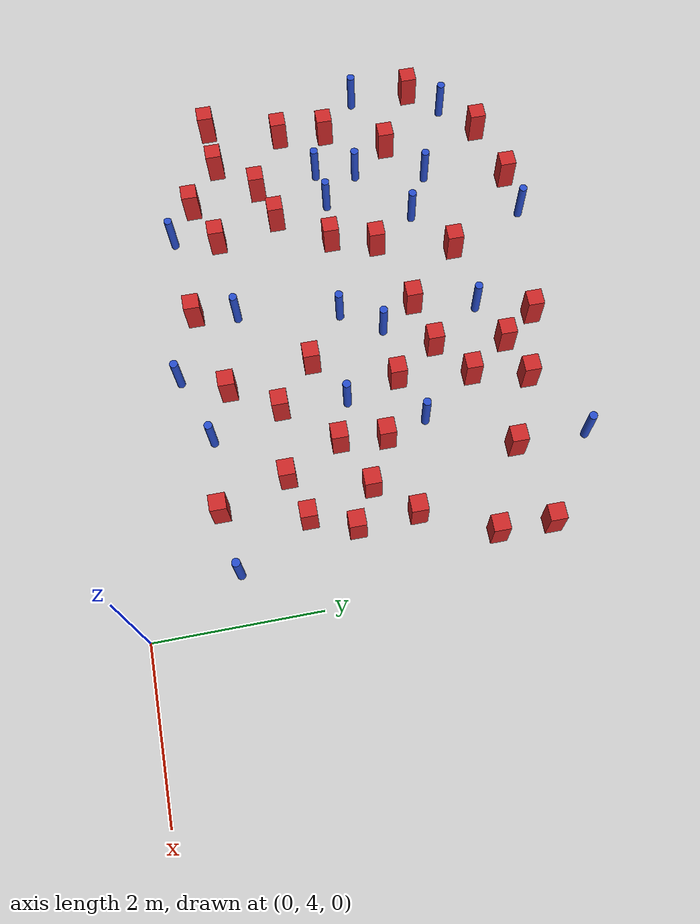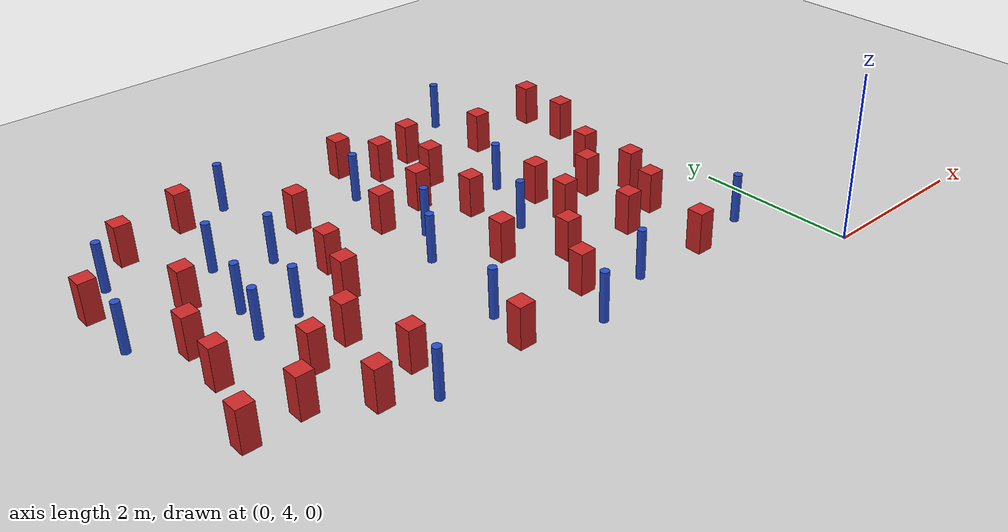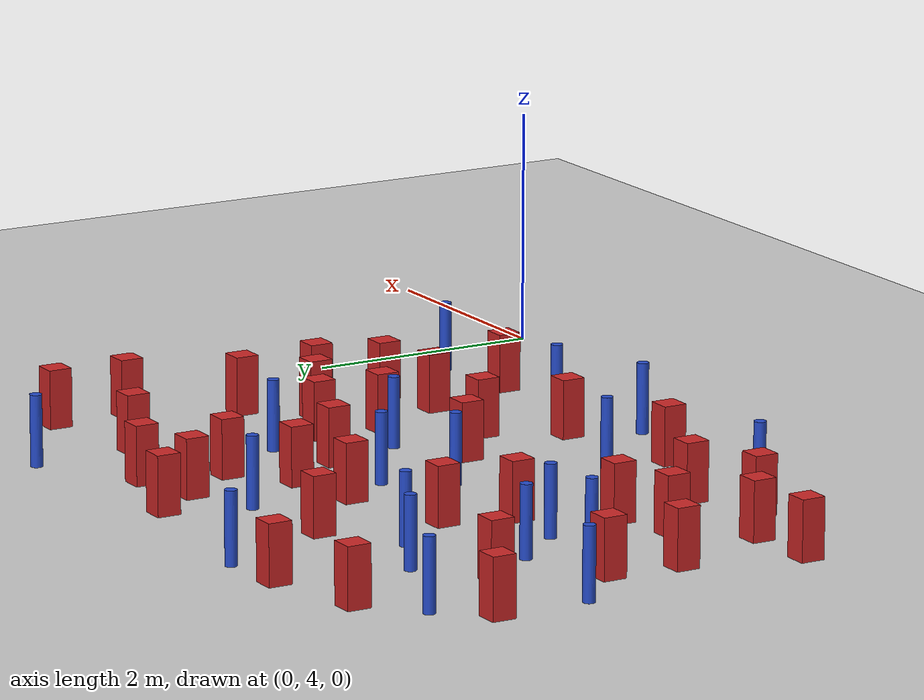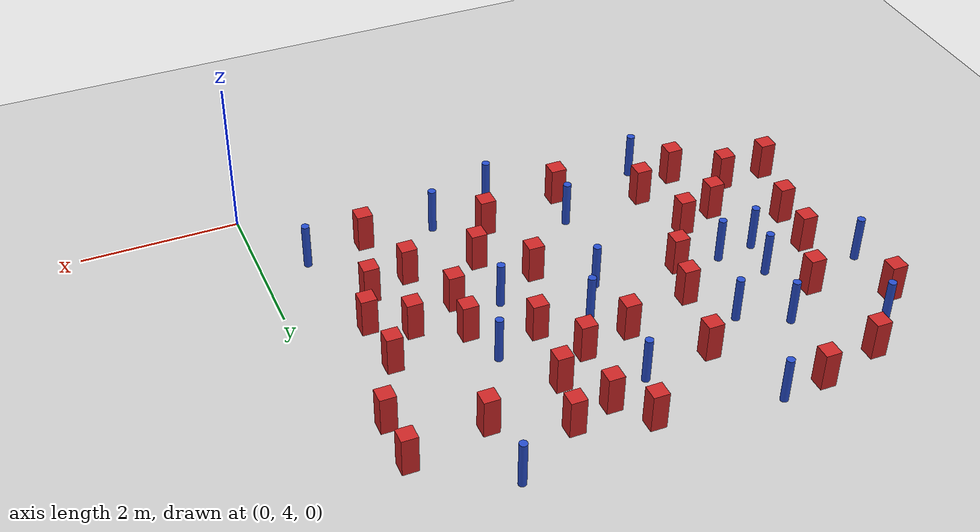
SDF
<sdf version="1.6">
 <world name="default">
  <model name="ground_plane">
   <static>1</static>
   <link name="link">
    <collision name="collision">
     <geometry><plane><normal>0 0 1</normal><size>100 100</size></plane></geometry>
     <surface><friction><ode><mu>100</mu><mu2>50</mu2></ode></friction></surface>
    </collision>
    <visual name="visual">
     <cast_shadows>0</cast_shadows>
     <geometry><plane><normal>0 0 1</normal><size>100 100</size></plane></geometry>
     <material>
      <ambient>1.0 1.0 1.0 1.0</ambient>
      <diffuse>0.8 0.8 0.8 1.0</diffuse>
      <specular>0.01 0.01 0.01 1.000000</specular>
     </material>
    </visual>
   </link>
  </model>
  <model name="pole_obstacle1">
   <static>true</static>
   <pose>-5.81910366463 6.87950488392 -3.09024884793e-07 -7.19054271911e-07 -2.1131507516e-07 -1.93935509277e-07</pose>
   <link name="link">
    <pose>0 0 0.3 0 -0 0</pose>
    <inertial>
     <mass>1</mass>
     <inertia><ixx>0.145833</ixx><ixy>0</ixy><ixz>0</ixz><iyy>0.145833</iyy><iyz>0</iyz><izz>0.125</izz></inertia>
    </inertial>
    <collision name="collision">
     <geometry><cylinder><radius>0.05</radius><length>.6</length></cylinder></geometry>
    </collision>
    <visual name="visual">
     <geometry><cylinder><radius>0.05</radius><length>.6</length></cylinder></geometry>
     <material>
      <script><name>Gazebo/Blue</name><uri>file://media/materials/scripts/gazebo.material</uri></script>
     </material>
    </visual>
   </link>
  </model>
  <model name="pole_obstacle7">
   <static>true</static>
   <pose>-1.54520545969 9.47205895562 -3.09024884793e-07 -7.19054271912e-07 -2.1131507515e-07 -1.93935509273e-07</pose>
   <link name="link">
    <pose>0 0 0.3 0 -0 0</pose>
    <inertial>
     <mass>1</mass>
     <inertia><ixx>0.145833</ixx><ixy>0</ixy><ixz>0</ixz><iyy>0.145833</iyy><iyz>0</iyz><izz>0.125</izz></inertia>
    </inertial>
    <collision name="collision">
     <geometry><cylinder><radius>0.05</radius><length>.6</length></cylinder></geometry>
    </collision>
    <visual name="visual">
     <geometry><cylinder><radius>0.05</radius><length>.6</length></cylinder></geometry>
     <material>
      <script><name>Gazebo/Blue</name><uri>file://media/materials/scripts/gazebo.material</uri></script>
     </material>
    </visual>
   </link>
  </model>
  <model name="square_post_obstacle10">
   <static>true</static>
   <pose>-2.92185013055 8.78792637313 -4.36207812815e-07 3.75137919937e-06 9.77721102514e-07 2.47381364184e-05</pose>
   <link name="link">
    <pose>0 0 0.25 0 -0 0</pose>
    <inertial>
     <mass>100</mass>
     <inertia>
      <ixx>0.166667</ixx>
      <ixy>0</ixy>
      <ixz>0</ixz>
      <iyy>0.166667</iyy>
      <iyz>0</iyz>
      <izz>0.166667</izz>
     </inertia>
    </inertial>
    <collision name="collision"><geometry><box><size>.2 .2 .5</size></box></geometry></collision>
    <visual name="visual">
     <geometry><box><size>.2 .2 .5</size></box></geometry>
     <material>
      <script><name>Gazebo/Red</name><uri>file://media/materials/scripts/gazebo.material</uri></script>
     </material>
    </visual>
   </link>
  </model>
  <model name="pole_obstacle16">
   <static>true</static>
   <pose>-3.11988666219 4.73188384982 -3.09024884793e-07 -7.19054271912e-07 -2.11315075134e-07 -1.93935509266e-07</pose>
   <link name="link">
    <pose>0 0 0.3 0 -0 0</pose>
    <inertial>
     <mass>1</mass>
     <inertia><ixx>0.145833</ixx><ixy>0</ixy><ixz>0</ixz><iyy>0.145833</iyy><iyz>0</iyz><izz>0.125</izz></inertia>
    </inertial>
    <collision name="collision">
     <geometry><cylinder><radius>0.05</radius><length>.6</length></cylinder></geometry>
    </collision>
    <visual name="visual">
     <geometry><cylinder><radius>0.05</radius><length>.6</length></cylinder></geometry>
     <material>
      <script><name>Gazebo/Blue</name><uri>file://media/materials/scripts/gazebo.material</uri></script>
     </material>
    </visual>
   </link>
  </model>
  <model name="pole_obstacle21">
   <static>true</static>
   <pose>-2.4813401762 6.71034206275 -3.09024884793e-07 -7.19054271912e-07 -2.11315075134e-07 -1.93935509266e-07</pose>
   <link name="link">
    <pose>0 0 0.3 0 -0 0</pose>
    <inertial>
     <mass>1</mass>
     <inertia><ixx>0.145833</ixx><ixy>0</ixy><ixz>0</ixz><iyy>0.145833</iyy><iyz>0</iyz><izz>0.125</izz></inertia>
    </inertial>
    <collision name="collision">
     <geometry><cylinder><radius>0.05</radius><length>.6</length></cylinder></geometry>
    </collision>
    <visual name="visual">
     <geometry><cylinder><radius>0.05</radius><length>.6</length></cylinder></geometry>
     <material>
      <script><name>Gazebo/Blue</name><uri>file://media/materials/scripts/gazebo.material</uri></script>
     </material>
    </visual>
   </link>
  </model>
  <model name="square_post_obstacle20">
   <static>true</static>
   <pose>-5.69033943853 6.07431925218 -4.36207812815e-07 3.75137919937e-06 9.77721102514e-07 2.47381364184e-05</pose>
   <link name="link">
    <pose>0 0 0.25 0 -0 0</pose>
    <inertial>
     <mass>100</mass>
     <inertia>
      <ixx>0.166667</ixx>
      <ixy>0</ixy>
      <ixz>0</ixz>
      <iyy>0.166667</iyy>
      <iyz>0</iyz>
      <izz>0.166667</izz>
     </inertia>
    </inertial>
    <collision name="collision"><geometry><box><size>.2 .2 .5</size></box></geometry></collision>
    <visual name="visual">
     <geometry><box><size>.2 .2 .5</size></box></geometry>
     <material>
      <script><name>Gazebo/Red</name><uri>file://media/materials/scripts/gazebo.material</uri></script>
     </material>
    </visual>
   </link>
  </model>
  <model name="square_post_obstacle23">
   <static>true</static>
   <pose>-0.913384427805 7.26544843649 -4.36207812815e-07 3.75137919937e-06 9.77721102514e-07 2.47381364184e-05</pose>
   <link name="link">
    <pose>0 0 0.25 0 -0 0</pose>
    <inertial>
     <mass>100</mass>
     <inertia>
      <ixx>0.166667</ixx>
      <ixy>0</ixy>
      <ixz>0</ixz>
      <iyy>0.166667</iyy>
      <iyz>0</iyz>
      <izz>0.166667</izz>
     </inertia>
    </inertial>
    <collision name="collision"><geometry><box><size>.2 .2 .5</size></box></geometry></collision>
    <visual name="visual">
     <geometry><box><size>.2 .2 .5</size></box></geometry>
     <material>
      <script><name>Gazebo/Red</name><uri>file://media/materials/scripts/gazebo.material</uri></script>
     </material>
    </visual>
   </link>
  </model>
  <model name="pole_obstacle31">
   <static>true</static>
   <pose>-0.582578847249 5.12245408738 -3.09024884793e-07 -7.19054271912e-07 -2.11315075129e-07 -1.93935509261e-07</pose>
   <link name="link">
    <pose>0 0 0.3 0 -0 0</pose>
    <inertial>
     <mass>1</mass>
     <inertia><ixx>0.145833</ixx><ixy>0</ixy><ixz>0</ixz><iyy>0.145833</iyy><iyz>0</iyz><izz>0.125</izz></inertia>
    </inertial>
    <collision name="collision">
     <geometry><cylinder><radius>0.05</radius><length>.6</length></cylinder></geometry>
    </collision>
    <visual name="visual">
     <geometry><cylinder><radius>0.05</radius><length>.6</length></cylinder></geometry>
     <material>
      <script><name>Gazebo/Blue</name><uri>file://media/materials/scripts/gazebo.material</uri></script>
     </material>
    </visual>
   </link>
  </model>
  <model name="square_post_obstacle28">
   <static>true</static>
   <pose>-1.90888130662 7.08629762976 -4.36207812815e-07 3.75137919937e-06 9.77721102514e-07 2.47381364184e-05</pose>
   <link name="link">
    <pose>0 0 0.25 0 -0 0</pose>
    <inertial>
     <mass>100</mass>
     <inertia>
      <ixx>0.166667</ixx>
      <ixy>0</ixy>
      <ixz>0</ixz>
      <iyy>0.166667</iyy>
      <iyz>0</iyz>
      <izz>0.166667</izz>
     </inertia>
    </inertial>
    <collision name="collision"><geometry><box><size>.2 .2 .5</size></box></geometry></collision>
    <visual name="visual">
     <geometry><box><size>.2 .2 .5</size></box></geometry>
     <material>
      <script><name>Gazebo/Red</name><uri>file://media/materials/scripts/gazebo.material</uri></script>
     </material>
    </visual>
   </link>
  </model>
  <model name="pole_obstacle51">
   <static>true</static>
   <pose>-3.68002328064 6.82890027857 -3.09024884793e-07 -7.19054271912e-07 -2.11315075134e-07 -1.93935509266e-07</pose>
   <link name="link">
    <pose>0 0 0.3 0 -0 0</pose>
    <inertial>
     <mass>1</mass>
     <inertia><ixx>0.145833</ixx><ixy>0</ixy><ixz>0</ixz><iyy>0.145833</iyy><iyz>0</iyz><izz>0.125</izz></inertia>
    </inertial>
    <collision name="collision">
     <geometry><cylinder><radius>0.05</radius><length>.6</length></cylinder></geometry>
    </collision>
    <visual name="visual">
     <geometry><cylinder><radius>0.05</radius><length>.6</length></cylinder></geometry>
     <material>
      <script><name>Gazebo/Blue</name><uri>file://media/materials/scripts/gazebo.material</uri></script>
     </material>
    </visual>
   </link>
  </model>
  <model name="square_post_obstacle40">
   <static>true</static>
   <pose>-1.96102876707 6.52310053154 -4.36207812815e-07 3.75137919937e-06 9.77721102514e-07 2.47381364184e-05</pose>
   <link name="link">
    <pose>0 0 0.25 0 -0 0</pose>
    <inertial>
     <mass>100</mass>
     <inertia>
      <ixx>0.166667</ixx>
      <ixy>0</ixy>
      <ixz>0</ixz>
      <iyy>0.166667</iyy>
      <iyz>0</iyz>
      <izz>0.166667</izz>
     </inertia>
    </inertial>
    <collision name="collision"><geometry><box><size>.2 .2 .5</size></box></geometry></collision>
    <visual name="visual">
     <geometry><box><size>.2 .2 .5</size></box></geometry>
     <material>
      <script><name>Gazebo/Red</name><uri>file://media/materials/scripts/gazebo.material</uri></script>
     </material>
    </visual>
   </link>
  </model>
  <model name="pole_obstacle63">
   <static>true</static>
   <pose>-6.89282712738 7.5607407671 -3.09024884793e-07 -7.19054271911e-07 -2.1131507516e-07 -1.93935509277e-07</pose>
   <link name="link">
    <pose>0 0 0.3 0 -0 0</pose>
    <inertial>
     <mass>1</mass>
     <inertia><ixx>0.145833</ixx><ixy>0</ixy><ixz>0</ixz><iyy>0.145833</iyy><iyz>0</iyz><izz>0.125</izz></inertia>
    </inertial>
    <collision name="collision">
     <geometry><cylinder><radius>0.05</radius><length>.6</length></cylinder></geometry>
    </collision>
    <visual name="visual">
     <geometry><cylinder><radius>0.05</radius><length>.6</length></cylinder></geometry>
     <material>
      <script><name>Gazebo/Blue</name><uri>file://media/materials/scripts/gazebo.material</uri></script>
     </material>
    </visual>
   </link>
  </model>
  <model name="pole_obstacle66">
   <static>true</static>
   <pose>-3.36919342229 7.32905597571 -3.09024884793e-07 -7.19054271912e-07 -2.11315075134e-07 -1.93935509266e-07</pose>
   <link name="link">
    <pose>0 0 0.3 0 -0 0</pose>
    <inertial>
     <mass>1</mass>
     <inertia><ixx>0.145833</ixx><ixy>0</ixy><ixz>0</ixz><iyy>0.145833</iyy><iyz>0</iyz><izz>0.125</izz></inertia>
    </inertial>
    <collision name="collision">
     <geometry><cylinder><radius>0.05</radius><length>.6</length></cylinder></geometry>
    </collision>
    <visual name="visual">
     <geometry><cylinder><radius>0.05</radius><length>.6</length></cylinder></geometry>
     <material>
      <script><name>Gazebo/Blue</name><uri>file://media/materials/scripts/gazebo.material</uri></script>
     </material>
    </visual>
   </link>
  </model>
  <model name="square_post_obstacle53">
   <static>true</static>
   <pose>-6.05960566901 7.86683518899 -4.36207812815e-07 3.75137919937e-06 9.77721102514e-07 2.47381364184e-05</pose>
   <link name="link">
    <pose>0 0 0.25 0 -0 0</pose>
    <inertial>
     <mass>100</mass>
     <inertia>
      <ixx>0.166667</ixx>
      <ixy>0</ixy>
      <ixz>0</ixz>
      <iyy>0.166667</iyy>
      <iyz>0</iyz>
      <izz>0.166667</izz>
     </inertia>
    </inertial>
    <collision name="collision"><geometry><box><size>.2 .2 .5</size></box></geometry></collision>
    <visual name="visual">
     <geometry><box><size>.2 .2 .5</size></box></geometry>
     <material>
      <script><name>Gazebo/Red</name><uri>file://media/materials/scripts/gazebo.material</uri></script>
     </material>
    </visual>
   </link>
  </model>
  <model name="square_post_obstacle54">
   <static>true</static>
   <pose>-1.08335319631 6.00591386865 -4.36207812815e-07 3.75137919937e-06 9.77721102514e-07 2.47381364184e-05</pose>
   <link name="link">
    <pose>0 0 0.25 0 -0 0</pose>
    <inertial>
     <mass>100</mass>
     <inertia>
      <ixx>0.166667</ixx>
      <ixy>0</ixy>
      <ixz>0</ixz>
      <iyy>0.166667</iyy>
      <iyz>0</iyz>
      <izz>0.166667</izz>
     </inertia>
    </inertial>
    <collision name="collision"><geometry><box><size>.2 .2 .5</size></box></geometry></collision>
    <visual name="visual">
     <geometry><box><size>.2 .2 .5</size></box></geometry>
     <material>
      <script><name>Gazebo/Red</name><uri>file://media/materials/scripts/gazebo.material</uri></script>
     </material>
    </visual>
   </link>
  </model>
  <model name="square_post_obstacle56">
   <static>true</static>
   <pose>-6.75556557053 5.54607688171 -4.36207812815e-07 3.75137919937e-06 9.77721102514e-07 2.47381364184e-05</pose>
   <link name="link">
    <pose>0 0 0.25 0 -0 0</pose>
    <inertial>
     <mass>100</mass>
     <inertia>
      <ixx>0.166667</ixx>
      <ixy>0</ixy>
      <ixz>0</ixz>
      <iyy>0.166667</iyy>
      <iyz>0</iyz>
      <izz>0.166667</izz>
     </inertia>
    </inertial>
    <collision name="collision"><geometry><box><size>.2 .2 .5</size></box></geometry></collision>
    <visual name="visual">
     <geometry><box><size>.2 .2 .5</size></box></geometry>
     <material>
      <script><name>Gazebo/Red</name><uri>file://media/materials/scripts/gazebo.material</uri></script>
     </material>
    </visual>
   </link>
  </model>
  <model name="square_post_obstacle58">
   <static>true</static>
   <pose>-3.97775854832 5.02217775804 -4.36207812815e-07 3.75137919937e-06 9.77721102514e-07 2.47381364184e-05</pose>
   <link name="link">
    <pose>0 0 0.25 0 -0 0</pose>
    <inertial>
     <mass>100</mass>
     <inertia>
      <ixx>0.166667</ixx>
      <ixy>0</ixy>
      <ixz>0</ixz>
      <iyy>0.166667</iyy>
      <iyz>0</iyz>
      <izz>0.166667</izz>
     </inertia>
    </inertial>
    <collision name="collision"><geometry><box><size>.2 .2 .5</size></box></geometry></collision>
    <visual name="visual">
     <geometry><box><size>.2 .2 .5</size></box></geometry>
     <material>
      <script><name>Gazebo/Red</name><uri>file://media/materials/scripts/gazebo.material</uri></script>
     </material>
    </visual>
   </link>
  </model>
  <model name="pole_obstacle69">
   <static>true</static>
   <pose>-3.88545519508 5.54849793998 -3.09024884793e-07 -7.19054271912e-07 -2.11315075134e-07 -1.93935509266e-07</pose>
   <link name="link">
    <pose>0 0 0.3 0 -0 0</pose>
    <inertial>
     <mass>1</mass>
     <inertia><ixx>0.145833</ixx><ixy>0</ixy><ixz>0</ixz><iyy>0.145833</iyy><iyz>0</iyz><izz>0.125</izz></inertia>
    </inertial>
    <collision name="collision">
     <geometry><cylinder><radius>0.05</radius><length>.6</length></cylinder></geometry>
    </collision>
    <visual name="visual">
     <geometry><cylinder><radius>0.05</radius><length>.6</length></cylinder></geometry>
     <material>
      <script><name>Gazebo/Blue</name><uri>file://media/materials/scripts/gazebo.material</uri></script>
     </material>
    </visual>
   </link>
  </model>
  <model name="pole_obstacle71">
   <static>true</static>
   <pose>-6.54564221187 8.72471281637 -3.09024884793e-07 -7.19054271912e-07 -2.1131507513e-07 -1.93935509261e-07</pose>
   <link name="link">
    <pose>0 0 0.3 0 -0 0</pose>
    <inertial>
     <mass>1</mass>
     <inertia><ixx>0.145833</ixx><ixy>0</ixy><ixz>0</ixz><iyy>0.145833</iyy><iyz>0</iyz><izz>0.125</izz></inertia>
    </inertial>
    <collision name="collision">
     <geometry><cylinder><radius>0.05</radius><length>.6</length></cylinder></geometry>
    </collision>
    <visual name="visual">
     <geometry><cylinder><radius>0.05</radius><length>.6</length></cylinder></geometry>
     <material>
      <script><name>Gazebo/Blue</name><uri>file://media/materials/scripts/gazebo.material</uri></script>
     </material>
    </visual>
   </link>
  </model>
  <model name="square_post_obstacle62">
   <static>true</static>
   <pose>-4.75020035172 6.90127368243 -4.36207812815e-07 3.75137919937e-06 9.77721102514e-07 2.47381364184e-05</pose>
   <link name="link">
    <pose>0 0 0.25 0 -0 0</pose>
    <inertial>
     <mass>100</mass>
     <inertia>
      <ixx>0.166667</ixx>
      <ixy>0</ixy>
      <ixz>0</ixz>
      <iyy>0.166667</iyy>
      <iyz>0</iyz>
      <izz>0.166667</izz>
     </inertia>
    </inertial>
    <collision name="collision"><geometry><box><size>.2 .2 .5</size></box></geometry></collision>
    <visual name="visual">
     <geometry><box><size>.2 .2 .5</size></box></geometry>
     <material>
      <script><name>Gazebo/Red</name><uri>file://media/materials/scripts/gazebo.material</uri></script>
     </material>
    </visual>
   </link>
  </model>
  <model name="square_post_obstacle67">
   <static>true</static>
   <pose>-3.06063541114 6.3647445332 -4.36207812815e-07 3.75137919937e-06 9.77721102514e-07 2.47381364184e-05</pose>
   <link name="link">
    <pose>0 0 0.25 0 -0 0</pose>
    <inertial>
     <mass>100</mass>
     <inertia>
      <ixx>0.166667</ixx>
      <ixy>0</ixy>
      <ixz>0</ixz>
      <iyy>0.166667</iyy>
      <iyz>0</iyz>
      <izz>0.166667</izz>
     </inertia>
    </inertial>
    <collision name="collision"><geometry><box><size>.2 .2 .5</size></box></geometry></collision>
    <visual name="visual">
     <geometry><box><size>.2 .2 .5</size></box></geometry>
     <material>
      <script><name>Gazebo/Red</name><uri>file://media/materials/scripts/gazebo.material</uri></script>
     </material>
    </visual>
   </link>
  </model>
  <model name="square_post_obstacle69">
   <static>true</static>
   <pose>-6.48066098144 6.48810462248 -4.36207812815e-07 3.75137919937e-06 9.77721102514e-07 2.47381364184e-05</pose>
   <link name="link">
    <pose>0 0 0.25 0 -0 0</pose>
    <inertial>
     <mass>100</mass>
     <inertia>
      <ixx>0.166667</ixx>
      <ixy>0</ixy>
      <ixz>0</ixz>
      <iyy>0.166667</iyy>
      <iyz>0</iyz>
      <izz>0.166667</izz>
     </inertia>
    </inertial>
    <collision name="collision"><geometry><box><size>.2 .2 .5</size></box></geometry></collision>
    <visual name="visual">
     <geometry><box><size>.2 .2 .5</size></box></geometry>
     <material>
      <script><name>Gazebo/Red</name><uri>file://media/materials/scripts/gazebo.material</uri></script>
     </material>
    </visual>
   </link>
  </model>
  <model name="square_post_obstacle71">
   <static>true</static>
   <pose>-2.38871899332 8.95603052741 -4.36207812815e-07 3.75137919937e-06 9.77721102514e-07 2.47381364184e-05</pose>
   <link name="link">
    <pose>0 0 0.25 0 -0 0</pose>
    <inertial>
     <mass>100</mass>
     <inertia>
      <ixx>0.166667</ixx>
      <ixy>0</ixy>
      <ixz>0</ixz>
      <iyy>0.166667</iyy>
      <iyz>0</iyz>
      <izz>0.166667</izz>
     </inertia>
    </inertial>
    <collision name="collision"><geometry><box><size>.2 .2 .5</size></box></geometry></collision>
    <visual name="visual">
     <geometry><box><size>.2 .2 .5</size></box></geometry>
     <material>
      <script><name>Gazebo/Red</name><uri>file://media/materials/scripts/gazebo.material</uri></script>
     </material>
    </visual>
   </link>
  </model>
  <model name="square_post_obstacle76">
   <static>true</static>
   <pose>-2.66284268109 7.36898340388 -4.36207812815e-07 3.75137919937e-06 9.77721102514e-07 2.47381364184e-05</pose>
   <link name="link">
    <pose>0 0 0.25 0 -0 0</pose>
    <inertial>
     <mass>100</mass>
     <inertia>
      <ixx>0.166667</ixx>
      <ixy>0</ixy>
      <ixz>0</ixz>
      <iyy>0.166667</iyy>
      <iyz>0</iyz>
      <izz>0.166667</izz>
     </inertia>
    </inertial>
    <collision name="collision"><geometry><box><size>.2 .2 .5</size></box></geometry></collision>
    <visual name="visual">
     <geometry><box><size>.2 .2 .5</size></box></geometry>
     <material>
      <script><name>Gazebo/Red</name><uri>file://media/materials/scripts/gazebo.material</uri></script>
     </material>
    </visual>
   </link>
  </model>
  <model name="square_post_obstacle81">
   <static>true</static>
   <pose>-0.51741098183 8.13275958031 -4.36207812815e-07 3.75137919937e-06 9.77721102514e-07 2.47381364184e-05</pose>
   <link name="link">
    <pose>0 0 0.25 0 -0 0</pose>
    <inertial>
     <mass>100</mass>
     <inertia>
      <ixx>0.166667</ixx>
      <ixy>0</ixy>
      <ixz>0</ixz>
      <iyy>0.166667</iyy>
      <iyz>0</iyz>
      <izz>0.166667</izz>
     </inertia>
    </inertial>
    <collision name="collision"><geometry><box><size>.2 .2 .5</size></box></geometry></collision>
    <visual name="visual">
     <geometry><box><size>.2 .2 .5</size></box></geometry>
     <material>
      <script><name>Gazebo/Red</name><uri>file://media/materials/scripts/gazebo.material</uri></script>
     </material>
    </visual>
   </link>
  </model>
  <model name="pole_obstacle96">
   <static>true</static>
   <pose>-3.47852225665 8.54551004193 -3.09024884848e-07 -7.19054271902e-07 -2.11315075199e-07 -1.93935509286e-07</pose>
   <link name="link">
    <pose>0 0 0.3 0 -0 0</pose>
    <inertial>
     <mass>1</mass>
     <inertia><ixx>0.145833</ixx><ixy>0</ixy><ixz>0</ixz><iyy>0.145833</iyy><iyz>0</iyz><izz>0.125</izz></inertia>
    </inertial>
    <collision name="collision">
     <geometry><cylinder><radius>0.05</radius><length>.6</length></cylinder></geometry>
    </collision>
    <visual name="visual">
     <geometry><cylinder><radius>0.05</radius><length>.6</length></cylinder></geometry>
     <material>
      <script><name>Gazebo/Blue</name><uri>file://media/materials/scripts/gazebo.material</uri></script>
     </material>
    </visual>
   </link>
  </model>
  <model name="square_post_obstacle99">
   <static>true</static>
   <pose>-0.866859720588 6.53559169638 -4.36207812815e-07 3.75137919937e-06 9.77721102514e-07 2.47381364184e-05</pose>
   <link name="link">
    <pose>0 0 0.25 0 -0 0</pose>
    <inertial>
     <mass>100</mass>
     <inertia>
      <ixx>0.166667</ixx>
      <ixy>0</ixy>
      <ixz>0</ixz>
      <iyy>0.166667</iyy>
      <iyz>0</iyz>
      <izz>0.166667</izz>
     </inertia>
    </inertial>
    <collision name="collision"><geometry><box><size>.2 .2 .5</size></box></geometry></collision>
    <visual name="visual">
     <geometry><box><size>.2 .2 .5</size></box></geometry>
     <material>
      <script><name>Gazebo/Red</name><uri>file://media/materials/scripts/gazebo.material</uri></script>
     </material>
    </visual>
   </link>
  </model>
  <model name="square_post_obstacle108">
   <static>true</static>
   <pose>-2.8772956488 5.30305621792 -4.36207812815e-07 3.75137919937e-06 9.77721102514e-07 2.47381364184e-05</pose>
   <link name="link">
    <pose>0 0 0.25 0 -0 0</pose>
    <inertial>
     <mass>100</mass>
     <inertia>
      <ixx>0.166667</ixx>
      <ixy>0</ixy>
      <ixz>0</ixz>
      <iyy>0.166667</iyy>
      <iyz>0</iyz>
      <izz>0.166667</izz>
     </inertia>
    </inertial>
    <collision name="collision"><geometry><box><size>.2 .2 .5</size></box></geometry></collision>
    <visual name="visual">
     <geometry><box><size>.2 .2 .5</size></box></geometry>
     <material>
      <script><name>Gazebo/Red</name><uri>file://media/materials/scripts/gazebo.material</uri></script>
     </material>
    </visual>
   </link>
  </model>
  <model name="square_post_obstacle112">
   <static>true</static>
   <pose>-5.31039537098 9.34844124373 -4.36207812815e-07 3.75137919937e-06 9.77721102514e-07 2.47381364184e-05</pose>
   <link name="link">
    <pose>0 0 0.25 0 -0 0</pose>
    <inertial>
     <mass>100</mass>
     <inertia>
      <ixx>0.166667</ixx>
      <ixy>0</ixy>
      <ixz>0</ixz>
      <iyy>0.166667</iyy>
      <iyz>0</iyz>
      <izz>0.166667</izz>
     </inertia>
    </inertial>
    <collision name="collision"><geometry><box><size>.2 .2 .5</size></box></geometry></collision>
    <visual name="visual">
     <geometry><box><size>.2 .2 .5</size></box></geometry>
     <material>
      <script><name>Gazebo/Red</name><uri>file://media/materials/scripts/gazebo.material</uri></script>
     </material>
    </visual>
   </link>
  </model>
  <model name="square_post_obstacle113">
   <static>true</static>
   <pose>-0.518358275045 8.79095779649 -4.36207812815e-07 3.75137919937e-06 9.77721102514e-07 2.47381364184e-05</pose>
   <link name="link">
    <pose>0 0 0.25 0 -0 0</pose>
    <inertial>
     <mass>100</mass>
     <inertia>
      <ixx>0.166667</ixx>
      <ixy>0</ixy>
      <ixz>0</ixz>
      <iyy>0.166667</iyy>
      <iyz>0</iyz>
      <izz>0.166667</izz>
     </inertia>
    </inertial>
    <collision name="collision"><geometry><box><size>.2 .2 .5</size></box></geometry></collision>
    <visual name="visual">
     <geometry><box><size>.2 .2 .5</size></box></geometry>
     <material>
      <script><name>Gazebo/Red</name><uri>file://media/materials/scripts/gazebo.material</uri></script>
     </material>
    </visual>
   </link>
  </model>
  <model name="square_post_obstacle122">
   <static>true</static>
   <pose>-5.18973914766 6.25024698253 -4.36207812815e-07 3.75137919937e-06 9.77721102514e-07 2.47381364184e-05</pose>
   <link name="link">
    <pose>0 0 0.25 0 -0 0</pose>
    <inertial>
     <mass>100</mass>
     <inertia>
      <ixx>0.166667</ixx>
      <ixy>0</ixy>
      <ixz>0</ixz>
      <iyy>0.166667</iyy>
      <iyz>0</iyz>
      <izz>0.166667</izz>
     </inertia>
    </inertial>
    <collision name="collision"><geometry><box><size>.2 .2 .5</size></box></geometry></collision>
    <visual name="visual">
     <geometry><box><size>.2 .2 .5</size></box></geometry>
     <material>
      <script><name>Gazebo/Red</name><uri>file://media/materials/scripts/gazebo.material</uri></script>
     </material>
    </visual>
   </link>
  </model>
  <model name="pole_obstacle127">
   <static>true</static>
   <pose>-4.94865122802 8.01167630632 -3.09024884793e-07 -7.19054271912e-07 -2.11315075147e-07 -1.9393550927e-07</pose>
   <link name="link">
    <pose>0 0 0.3 0 -0 0</pose>
    <inertial>
     <mass>1</mass>
     <inertia><ixx>0.145833</ixx><ixy>0</ixy><ixz>0</ixz><iyy>0.145833</iyy><iyz>0</iyz><izz>0.125</izz></inertia>
    </inertial>
    <collision name="collision">
     <geometry><cylinder><radius>0.05</radius><length>.6</length></cylinder></geometry>
    </collision>
    <visual name="visual">
     <geometry><cylinder><radius>0.05</radius><length>.6</length></cylinder></geometry>
     <material>
      <script><name>Gazebo/Blue</name><uri>file://media/materials/scripts/gazebo.material</uri></script>
     </material>
    </visual>
   </link>
  </model>
  <model name="pole_obstacle130">
   <static>true</static>
   <pose>-5.10945780586 4.89234305358 -3.09024884793e-07 -7.19054271911e-07 -2.1131507516e-07 -1.93935509277e-07</pose>
   <link name="link">
    <pose>0 0 0.3 0 -0 0</pose>
    <inertial>
     <mass>1</mass>
     <inertia><ixx>0.145833</ixx><ixy>0</ixy><ixz>0</ixz><iyy>0.145833</iyy><iyz>0</iyz><izz>0.125</izz></inertia>
    </inertial>
    <collision name="collision">
     <geometry><cylinder><radius>0.05</radius><length>.6</length></cylinder></geometry>
    </collision>
    <visual name="visual">
     <geometry><cylinder><radius>0.05</radius><length>.6</length></cylinder></geometry>
     <material>
      <script><name>Gazebo/Blue</name><uri>file://media/materials/scripts/gazebo.material</uri></script>
     </material>
    </visual>
   </link>
  </model>
  <model name="square_post_obstacle129">
   <static>true</static>
   <pose>-1.62517659234 5.83879428474 -4.36207812815e-07 3.75137919937e-06 9.77721102514e-07 2.47381364184e-05</pose>
   <link name="link">
    <pose>0 0 0.25 0 -0 0</pose>
    <inertial>
     <mass>100</mass>
     <inertia>
      <ixx>0.166667</ixx>
      <ixy>0</ixy>
      <ixz>0</ixz>
      <iyy>0.166667</iyy>
      <iyz>0</iyz>
      <izz>0.166667</izz>
     </inertia>
    </inertial>
    <collision name="collision"><geometry><box><size>.2 .2 .5</size></box></geometry></collision>
    <visual name="visual">
     <geometry><box><size>.2 .2 .5</size></box></geometry>
     <material>
      <script><name>Gazebo/Red</name><uri>file://media/materials/scripts/gazebo.material</uri></script>
     </material>
    </visual>
   </link>
  </model>
  <model name="square_post_obstacle141">
   <static>true</static>
   <pose>-2.54960175752 8.27579716547 -4.36207812815e-07 3.75137919937e-06 9.77721102514e-07 2.47381364184e-05</pose>
   <link name="link">
    <pose>0 0 0.25 0 -0 0</pose>
    <inertial>
     <mass>100</mass>
     <inertia>
      <ixx>0.166667</ixx>
      <ixy>0</ixy>
      <ixz>0</ixz>
      <iyy>0.166667</iyy>
      <iyz>0</iyz>
      <izz>0.166667</izz>
     </inertia>
    </inertial>
    <collision name="collision"><geometry><box><size>.2 .2 .5</size></box></geometry></collision>
    <visual name="visual">
     <geometry><box><size>.2 .2 .5</size></box></geometry>
     <material>
      <script><name>Gazebo/Red</name><uri>file://media/materials/scripts/gazebo.material</uri></script>
     </material>
    </visual>
   </link>
  </model>
  <model name="pole_obstacle148">
   <static>true</static>
   <pose>-2.26313858138 5.0323658661 -3.09024884793e-07 -7.19054271912e-07 -2.11315075134e-07 -1.93935509266e-07</pose>
   <link name="link">
    <pose>0 0 0.3 0 -0 0</pose>
    <inertial>
     <mass>1</mass>
     <inertia><ixx>0.145833</ixx><ixy>0</ixy><ixz>0</ixz><iyy>0.145833</iyy><iyz>0</iyz><izz>0.125</izz></inertia>
    </inertial>
    <collision name="collision">
     <geometry><cylinder><radius>0.05</radius><length>.6</length></cylinder></geometry>
    </collision>
    <visual name="visual">
     <geometry><cylinder><radius>0.05</radius><length>.6</length></cylinder></geometry>
     <material>
      <script><name>Gazebo/Blue</name><uri>file://media/materials/scripts/gazebo.material</uri></script>
     </material>
    </visual>
   </link>
  </model>
  <model name="square_post_obstacle144">
   <static>true</static>
   <pose>-6.1210495128 9.12915487135 -4.36207812815e-07 3.75137919937e-06 9.77721102514e-07 2.47381364184e-05</pose>
   <link name="link">
    <pose>0 0 0.25 0 -0 0</pose>
    <inertial>
     <mass>100</mass>
     <inertia>
      <ixx>0.166667</ixx>
      <ixy>0</ixy>
      <ixz>0</ixz>
      <iyy>0.166667</iyy>
      <iyz>0</iyz>
      <izz>0.166667</izz>
     </inertia>
    </inertial>
    <collision name="collision"><geometry><box><size>.2 .2 .5</size></box></geometry></collision>
    <visual name="visual">
     <geometry><box><size>.2 .2 .5</size></box></geometry>
     <material>
      <script><name>Gazebo/Red</name><uri>file://media/materials/scripts/gazebo.material</uri></script>
     </material>
    </visual>
   </link>
  </model>
  <model name="square_post_obstacle146">
   <static>true</static>
   <pose>-5.56771904944 5.19184647175 -4.36207812815e-07 3.75137919937e-06 9.77721102514e-07 2.47381364184e-05</pose>
   <link name="link">
    <pose>0 0 0.25 0 -0 0</pose>
    <inertial>
     <mass>100</mass>
     <inertia>
      <ixx>0.166667</ixx>
      <ixy>0</ixy>
      <ixz>0</ixz>
      <iyy>0.166667</iyy>
      <iyz>0</iyz>
      <izz>0.166667</izz>
     </inertia>
    </inertial>
    <collision name="collision"><geometry><box><size>.2 .2 .5</size></box></geometry></collision>
    <visual name="visual">
     <geometry><box><size>.2 .2 .5</size></box></geometry>
     <material>
      <script><name>Gazebo/Red</name><uri>file://media/materials/scripts/gazebo.material</uri></script>
     </material>
    </visual>
   </link>
  </model>
  <model name="pole_obstacle156">
   <static>true</static>
   <pose>-2.07924059618 7.60152440118 -3.09024884793e-07 -7.19054271912e-07 -2.11315075134e-07 -1.93935509266e-07</pose>
   <link name="link">
    <pose>0 0 0.3 0 -0 0</pose>
    <inertial>
     <mass>1</mass>
     <inertia><ixx>0.145833</ixx><ixy>0</ixy><ixz>0</ixz><iyy>0.145833</iyy><iyz>0</iyz><izz>0.125</izz></inertia>
    </inertial>
    <collision name="collision">
     <geometry><cylinder><radius>0.05</radius><length>.6</length></cylinder></geometry>
    </collision>
    <visual name="visual">
     <geometry><cylinder><radius>0.05</radius><length>.6</length></cylinder></geometry>
     <material>
      <script><name>Gazebo/Blue</name><uri>file://media/materials/scripts/gazebo.material</uri></script>
     </material>
    </visual>
   </link>
  </model>
  <model name="square_post_obstacle153">
   <static>true</static>
   <pose>-1.35425568316 5.00131478572 -4.36207812815e-07 3.75137919937e-06 9.77721102514e-07 2.47381364184e-05</pose>
   <link name="link">
    <pose>0 0 0.25 0 -0 0</pose>
    <inertial>
     <mass>100</mass>
     <inertia>
      <ixx>0.166667</ixx>
      <ixy>0</ixy>
      <ixz>0</ixz>
      <iyy>0.166667</iyy>
      <iyz>0</iyz>
      <izz>0.166667</izz>
     </inertia>
    </inertial>
    <collision name="collision"><geometry><box><size>.2 .2 .5</size></box></geometry></collision>
    <visual name="visual">
     <geometry><box><size>.2 .2 .5</size></box></geometry>
     <material>
      <script><name>Gazebo/Red</name><uri>file://media/materials/scripts/gazebo.material</uri></script>
     </material>
    </visual>
   </link>
  </model>
  <model name="square_post_obstacle160">
   <static>true</static>
   <pose>-3.65134364166 7.76203742378 -4.36207812815e-07 3.75137919937e-06 9.77721102514e-07 2.47381364184e-05</pose>
   <link name="link">
    <pose>0 0 0.25 0 -0 0</pose>
    <inertial>
     <mass>100</mass>
     <inertia>
      <ixx>0.166667</ixx>
      <ixy>0</ixy>
      <ixz>0</ixz>
      <iyy>0.166667</iyy>
      <iyz>0</iyz>
      <izz>0.166667</izz>
     </inertia>
    </inertial>
    <collision name="collision"><geometry><box><size>.2 .2 .5</size></box></geometry></collision>
    <visual name="visual">
     <geometry><box><size>.2 .2 .5</size></box></geometry>
     <material>
      <script><name>Gazebo/Red</name><uri>file://media/materials/scripts/gazebo.material</uri></script>
     </material>
    </visual>
   </link>
  </model>
  <model name="square_post_obstacle166">
   <static>true</static>
   <pose>-1.53278414208 8.59306358992 -4.36207812815e-07 3.75137919937e-06 9.77721102514e-07 2.47381364184e-05</pose>
   <link name="link">
    <pose>0 0 0.25 0 -0 0</pose>
    <inertial>
     <mass>100</mass>
     <inertia>
      <ixx>0.166667</ixx>
      <ixy>0</ixy>
      <ixz>0</ixz>
      <iyy>0.166667</iyy>
      <iyz>0</iyz>
      <izz>0.166667</izz>
     </inertia>
    </inertial>
    <collision name="collision"><geometry><box><size>.2 .2 .5</size></box></geometry></collision>
    <visual name="visual">
     <geometry><box><size>.2 .2 .5</size></box></geometry>
     <material>
      <script><name>Gazebo/Red</name><uri>file://media/materials/scripts/gazebo.material</uri></script>
     </material>
    </visual>
   </link>
  </model>
  <model name="square_post_obstacle168">
   <static>true</static>
   <pose>-3.02287783501 7.90533554652 -4.36207812815e-07 3.75137919937e-06 9.77721102514e-07 2.47381364184e-05</pose>
   <link name="link">
    <pose>0 0 0.25 0 -0 0</pose>
    <inertial>
     <mass>100</mass>
     <inertia>
      <ixx>0.166667</ixx>
      <ixy>0</ixy>
      <ixz>0</ixz>
      <iyy>0.166667</iyy>
      <iyz>0</iyz>
      <izz>0.166667</izz>
     </inertia>
    </inertial>
    <collision name="collision"><geometry><box><size>.2 .2 .5</size></box></geometry></collision>
    <visual name="visual">
     <geometry><box><size>.2 .2 .5</size></box></geometry>
     <material>
      <script><name>Gazebo/Red</name><uri>file://media/materials/scripts/gazebo.material</uri></script>
     </material>
    </visual>
   </link>
  </model>
  <model name="square_post_obstacle184">
   <static>true</static>
   <pose>-4.34975513158 8.43937028923 -4.36207812815e-07 3.75137919937e-06 9.77721102514e-07 2.47381364184e-05</pose>
   <link name="link">
    <pose>0 0 0.25 0 -0 0</pose>
    <inertial>
     <mass>100</mass>
     <inertia>
      <ixx>0.166667</ixx>
      <ixy>0</ixy>
      <ixz>0</ixz>
      <iyy>0.166667</iyy>
      <iyz>0</iyz>
      <izz>0.166667</izz>
     </inertia>
    </inertial>
    <collision name="collision"><geometry><box><size>.2 .2 .5</size></box></geometry></collision>
    <visual name="visual">
     <geometry><box><size>.2 .2 .5</size></box></geometry>
     <material>
      <script><name>Gazebo/Red</name><uri>file://media/materials/scripts/gazebo.material</uri></script>
     </material>
    </visual>
   </link>
  </model>
  <model name="square_post_obstacle188">
   <static>true</static>
   <pose>-2.51171147291 5.89281387275 -4.36207812815e-07 3.75137919937e-06 9.77721102514e-07 2.47381364184e-05</pose>
   <link name="link">
    <pose>0 0 0.25 0 -0 0</pose>
    <inertial>
     <mass>100</mass>
     <inertia>
      <ixx>0.166667</ixx>
      <ixy>0</ixy>
      <ixz>0</ixz>
      <iyy>0.166667</iyy>
      <iyz>0</iyz>
      <izz>0.166667</izz>
     </inertia>
    </inertial>
    <collision name="collision"><geometry><box><size>.2 .2 .5</size></box></geometry></collision>
    <visual name="visual">
     <geometry><box><size>.2 .2 .5</size></box></geometry>
     <material>
      <script><name>Gazebo/Red</name><uri>file://media/materials/scripts/gazebo.material</uri></script>
     </material>
    </visual>
   </link>
  </model>
  <model name="square_post_obstacle190">
   <static>true</static>
   <pose>-3.24379064791 9.20859407616 -4.36207812815e-07 3.75137919937e-06 9.77721102514e-07 2.47381364184e-05</pose>
   <link name="link">
    <pose>0 0 0.25 0 -0 0</pose>
    <inertial>
     <mass>100</mass>
     <inertia>
      <ixx>0.166667</ixx>
      <ixy>0</ixy>
      <ixz>0</ixz>
      <iyy>0.166667</iyy>
      <iyz>0</iyz>
      <izz>0.166667</izz>
     </inertia>
    </inertial>
    <collision name="collision"><geometry><box><size>.2 .2 .5</size></box></geometry></collision>
    <visual name="visual">
     <geometry><box><size>.2 .2 .5</size></box></geometry>
     <material>
      <script><name>Gazebo/Red</name><uri>file://media/materials/scripts/gazebo.material</uri></script>
     </material>
    </visual>
   </link>
  </model>
  <model name="square_post_obstacle194">
   <static>true</static>
   <pose>-6.42224278378 7.10030902141 -4.36207812815e-07 3.75137919937e-06 9.77721102514e-07 2.47381364184e-05</pose>
   <link name="link">
    <pose>0 0 0.25 0 -0 0</pose>
    <inertial>
     <mass>100</mass>
     <inertia>
      <ixx>0.166667</ixx>
      <ixy>0</ixy>
      <ixz>0</ixz>
      <iyy>0.166667</iyy>
      <iyz>0</iyz>
      <izz>0.166667</izz>
     </inertia>
    </inertial>
    <collision name="collision"><geometry><box><size>.2 .2 .5</size></box></geometry></collision>
    <visual name="visual">
     <geometry><box><size>.2 .2 .5</size></box></geometry>
     <material>
      <script><name>Gazebo/Red</name><uri>file://media/materials/scripts/gazebo.material</uri></script>
     </material>
    </visual>
   </link>
  </model>
  <model name="pole_obstacle188">
   <static>true</static>
   <pose>-5.52742053448 8.30104516814 -3.09024884793e-07 -7.19054271912e-07 -2.1131507513e-07 -1.93935509261e-07</pose>
   <link name="link">
    <pose>0 0 0.3 0 -0 0</pose>
    <inertial>
     <mass>1</mass>
     <inertia><ixx>0.145833</ixx><ixy>0</ixy><ixz>0</ixz><iyy>0.145833</iyy><iyz>0</iyz><izz>0.125</izz></inertia>
    </inertial>
    <collision name="collision">
     <geometry><cylinder><radius>0.05</radius><length>.6</length></cylinder></geometry>
    </collision>
    <visual name="visual">
     <geometry><cylinder><radius>0.05</radius><length>.6</length></cylinder></geometry>
     <material>
      <script><name>Gazebo/Blue</name><uri>file://media/materials/scripts/gazebo.material</uri></script>
     </material>
    </visual>
   </link>
  </model>
  <model name="square_post_obstacle201">
   <static>true</static>
   <pose>-4.5777087991 7.46769579644 -4.36207812815e-07 3.75137919937e-06 9.77721102514e-07 2.47381364184e-05</pose>
   <link name="link">
    <pose>0 0 0.25 0 -0 0</pose>
    <inertial>
     <mass>100</mass>
     <inertia>
      <ixx>0.166667</ixx>
      <ixy>0</ixy>
      <ixz>0</ixz>
      <iyy>0.166667</iyy>
      <iyz>0</iyz>
      <izz>0.166667</izz>
     </inertia>
    </inertial>
    <collision name="collision"><geometry><box><size>.2 .2 .5</size></box></geometry></collision>
    <visual name="visual">
     <geometry><box><size>.2 .2 .5</size></box></geometry>
     <material>
      <script><name>Gazebo/Red</name><uri>file://media/materials/scripts/gazebo.material</uri></script>
     </material>
    </visual>
   </link>
  </model>
  <model name="square_post_obstacle206">
   <static>true</static>
   <pose>-1.33293936178 6.80012630566 -4.36207812815e-07 3.75137919937e-06 9.77721102514e-07 2.47381364184e-05</pose>
   <link name="link">
    <pose>0 0 0.25 0 -0 0</pose>
    <inertial>
     <mass>100</mass>
     <inertia>
      <ixx>0.166667</ixx>
      <ixy>0</ixy>
      <ixz>0</ixz>
      <iyy>0.166667</iyy>
      <iyz>0</iyz>
      <izz>0.166667</izz>
     </inertia>
    </inertial>
    <collision name="collision"><geometry><box><size>.2 .2 .5</size></box></geometry></collision>
    <visual name="visual">
     <geometry><box><size>.2 .2 .5</size></box></geometry>
     <material>
      <script><name>Gazebo/Red</name><uri>file://media/materials/scripts/gazebo.material</uri></script>
     </material>
    </visual>
   </link>
  </model>
  <model name="pole_obstacle194">
   <static>true</static>
   <pose>-5.71371617375 7.39678116374 -3.09024884793e-07 -7.19054271911e-07 -2.1131507516e-07 -1.93935509277e-07</pose>
   <link name="link">
    <pose>0 0 0.3 0 -0 0</pose>
    <inertial>
     <mass>1</mass>
     <inertia><ixx>0.145833</ixx><ixy>0</ixy><ixz>0</ixz><iyy>0.145833</iyy><iyz>0</iyz><izz>0.125</izz></inertia>
    </inertial>
    <collision name="collision">
     <geometry><cylinder><radius>0.05</radius><length>.6</length></cylinder></geometry>
    </collision>
    <visual name="visual">
     <geometry><cylinder><radius>0.05</radius><length>.6</length></cylinder></geometry>
     <material>
      <script><name>Gazebo/Blue</name><uri>file://media/materials/scripts/gazebo.material</uri></script>
     </material>
    </visual>
   </link>
  </model>
  <model name="square_post_obstacle207">
   <static>true</static>
   <pose>-6.88036885155 8.33810357127 -4.36207812815e-07 3.75137919937e-06 9.77721102514e-07 2.47381364184e-05</pose>
   <link name="link">
    <pose>0 0 0.25 0 -0 0</pose>
    <inertial>
     <mass>100</mass>
     <inertia>
      <ixx>0.166667</ixx>
      <ixy>0</ixy>
      <ixz>0</ixz>
      <iyy>0.166667</iyy>
      <iyz>0</iyz>
      <izz>0.166667</izz>
     </inertia>
    </inertial>
    <collision name="collision"><geometry><box><size>.2 .2 .5</size></box></geometry></collision>
    <visual name="visual">
     <geometry><box><size>.2 .2 .5</size></box></geometry>
     <material>
      <script><name>Gazebo/Red</name><uri>file://media/materials/scripts/gazebo.material</uri></script>
     </material>
    </visual>
   </link>
  </model>
  <model name="square_post_obstacle210">
   <static>true</static>
   <pose>-6.13315166986 5.57858920397 -4.36207812815e-07 3.75137919937e-06 9.77721102514e-07 2.47381364184e-05</pose>
   <link name="link">
    <pose>0 0 0.25 0 -0 0</pose>
    <inertial>
     <mass>100</mass>
     <inertia>
      <ixx>0.166667</ixx>
      <ixy>0</ixy>
      <ixz>0</ixz>
      <iyy>0.166667</iyy>
      <iyz>0</iyz>
      <izz>0.166667</izz>
     </inertia>
    </inertial>
    <collision name="collision"><geometry><box><size>.2 .2 .5</size></box></geometry></collision>
    <visual name="visual">
     <geometry><box><size>.2 .2 .5</size></box></geometry>
     <material>
      <script><name>Gazebo/Red</name><uri>file://media/materials/scripts/gazebo.material</uri></script>
     </material>
    </visual>
   </link>
  </model>
  <model name="square_post_obstacle211">
   <static>true</static>
   <pose>-4.98556442789 5.45264466973 -4.36207812815e-07 3.75137919937e-06 9.77721102514e-07 2.47381364184e-05</pose>
   <link name="link">
    <pose>0 0 0.25 0 -0 0</pose>
    <inertial>
     <mass>100</mass>
     <inertia>
      <ixx>0.166667</ixx>
      <ixy>0</ixy>
      <ixz>0</ixz>
      <iyy>0.166667</iyy>
      <iyz>0</iyz>
      <izz>0.166667</izz>
     </inertia>
    </inertial>
    <collision name="collision"><geometry><box><size>.2 .2 .5</size></box></geometry></collision>
    <visual name="visual">
     <geometry><box><size>.2 .2 .5</size></box></geometry>
     <material>
      <script><name>Gazebo/Red</name><uri>file://media/materials/scripts/gazebo.material</uri></script>
     </material>
    </visual>
   </link>
  </model>
  <model name="pole_obstacle215">
   <static>true</static>
   <pose>-5.32080591861 6.94231312445 -3.09024884793e-07 -7.19054271911e-07 -2.1131507516e-07 -1.93935509277e-07</pose>
   <link name="link">
    <pose>0 0 0.3 0 -0 0</pose>
    <inertial>
     <mass>1</mass>
     <inertia><ixx>0.145833</ixx><ixy>0</ixy><ixz>0</ixz><iyy>0.145833</iyy><iyz>0</iyz><izz>0.125</izz></inertia>
    </inertial>
    <collision name="collision">
     <geometry><cylinder><radius>0.05</radius><length>.6</length></cylinder></geometry>
    </collision>
    <visual name="visual">
     <geometry><cylinder><radius>0.05</radius><length>.6</length></cylinder></geometry>
     <material>
      <script><name>Gazebo/Blue</name><uri>file://media/materials/scripts/gazebo.material</uri></script>
     </material>
    </visual>
   </link>
  </model>
  <model name="pole_obstacle228">
   <static>true</static>
   <pose>-4.75533999024 9.41785002078 -3.09024884793e-07 -7.19054271912e-07 -2.1131507513e-07 -1.93935509261e-07</pose>
   <link name="link">
    <pose>0 0 0.3 0 -0 0</pose>
    <inertial>
     <mass>1</mass>
     <inertia><ixx>0.145833</ixx><ixy>0</ixy><ixz>0</ixz><iyy>0.145833</iyy><iyz>0</iyz><izz>0.125</izz></inertia>
    </inertial>
    <collision name="collision">
     <geometry><cylinder><radius>0.05</radius><length>.6</length></cylinder></geometry>
    </collision>
    <visual name="visual">
     <geometry><cylinder><radius>0.05</radius><length>.6</length></cylinder></geometry>
     <material>
      <script><name>Gazebo/Blue</name><uri>file://media/materials/scripts/gazebo.material</uri></script>
     </material>
    </visual>
   </link>
  </model>
 </world>
</sdf>
